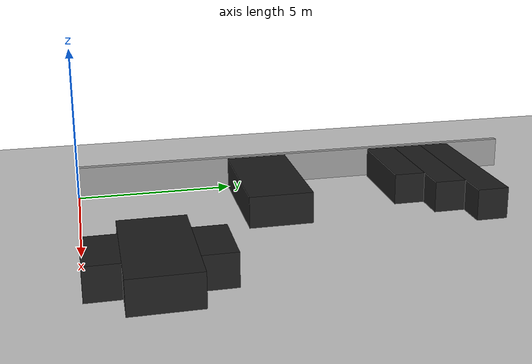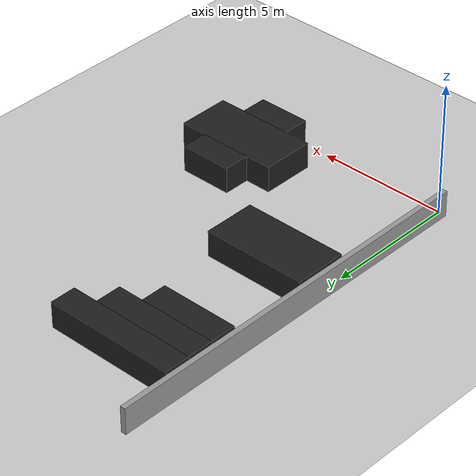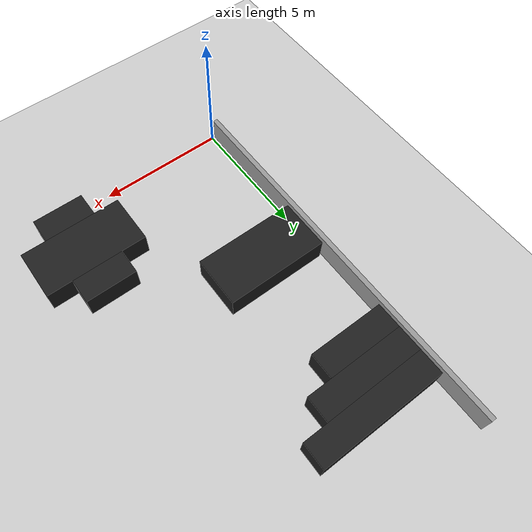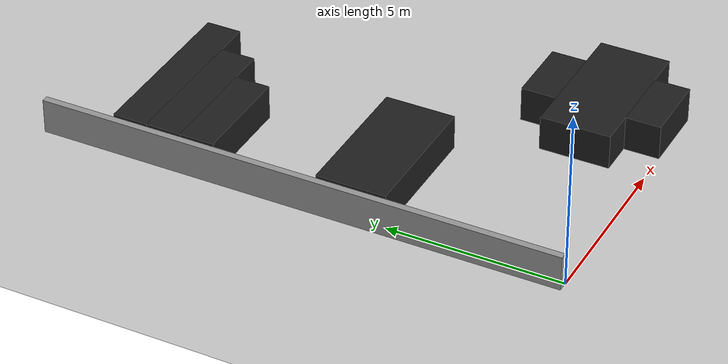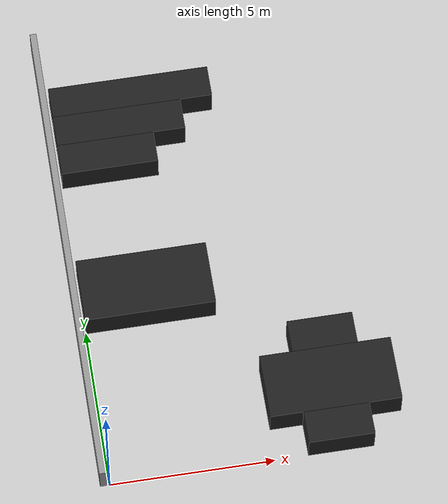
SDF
<sdf version="1.6">
 <world name="default">
  <model name="ground_plane">
   <static>1</static>
   <link name="link">
    <collision name="collision">
     <geometry><plane><normal>0 0 1</normal><size>100 100</size></plane></geometry>
     <surface><friction><ode><mu>100</mu><mu2>50</mu2></ode></friction></surface>
    </collision>
    <visual name="visual">
     <cast_shadows>0</cast_shadows>
     <geometry><plane><normal>0 0 1</normal><size>100 100</size></plane></geometry>
     <material>
      <script><uri>file://media/materials/scripts/gazebo.material</uri><name>Gazebo/Grey</name></script>
     </material>
    </visual>
   </link>
  </model>
  <model name="obstacle1">
   <link name="link_0">
    <inertial>
     <mass>1</mass>
     <inertia>
      <ixx>0.166667</ixx>
      <ixy>0</ixy>
      <ixz>0</ixz>
      <iyy>0.166667</iyy>
      <iyz>0</iyz>
      <izz>0.166667</izz>
     </inertia>
    </inertial>
    <visual name="visual">
     <geometry><box><size>4 2 1</size></box></geometry>
     <material>
      <lighting>1</lighting>
      <script><uri>file://media/materials/scripts/gazebo.material</uri><name>Gazebo/Black</name></script>
      <ambient>0 0 0 1</ambient>
      <diffuse>0 0 0 1</diffuse>
      <specular>0.01 0.01 0.01 1</specular>
      <emissive>0 0 0 1</emissive>
      <shader type="vertex"><normal_map>__default__</normal_map></shader>
     </material>
    </visual>
    <collision name="collision">
     <geometry><box><size>4 2 1</size></box></geometry>
     <surface>
      <friction>
       <ode><mu>1</mu><mu2>1</mu2><fdir1>0 0 0</fdir1><slip1>0</slip1><slip2>0</slip2></ode>
       <torsional>
        <coefficient>1</coefficient>
        <patch_radius>0</patch_radius>
        <surface_radius>0</surface_radius>
        <use_patch_radius>1</use_patch_radius>
        <ode><slip>0</slip></ode>
       </torsional>
      </friction>
      <bounce><restitution_coefficient>0</restitution_coefficient><threshold>1e+06</threshold></bounce>
      <contact>
       <collide_without_contact>0</collide_without_contact>
       <collide_without_contact_bitmask>1</collide_without_contact_bitmask>
       <collide_bitmask>1</collide_bitmask>
       <ode>
        <soft_cfm>0</soft_cfm>
        <soft_erp>0.2</soft_erp>
        <kp>1e+13</kp>
        <kd>1</kd>
        <max_vel>0.01</max_vel>
        <min_depth>0</min_depth>
       </ode>
       <bullet>
        <split_impulse>1</split_impulse>
        <split_impulse_penetration_threshold>-0.01</split_impulse_penetration_threshold>
        <soft_cfm>0</soft_cfm>
        <soft_erp>0.2</soft_erp>
        <kp>1e+13</kp>
        <kd>1</kd>
       </bullet>
      </contact>
     </surface>
    </collision>
   </link>
   <static>0</static>
   <pose>7.0 2.0 0.5 0 -0 0</pose>
  </model>
  <model name="obstacle2">
   <link name="link_0">
    <inertial>
     <mass>1</mass>
     <inertia>
      <ixx>0.166667</ixx>
      <ixy>0</ixy>
      <ixz>0</ixz>
      <iyy>0.166667</iyy>
      <iyz>0</iyz>
      <izz>0.166667</izz>
     </inertia>
    </inertial>
    <visual name="visual">
     <geometry><box><size>2 1 1</size></box></geometry>
     <material>
      <lighting>1</lighting>
      <script><uri>file://media/materials/scripts/gazebo.material</uri><name>Gazebo/Black</name></script>
      <ambient>0 0 0 1</ambient>
      <diffuse>0 0 0 1</diffuse>
      <specular>0.01 0.01 0.01 1</specular>
      <emissive>0 0 0 1</emissive>
      <shader type="vertex"><normal_map>__default__</normal_map></shader>
     </material>
    </visual>
    <collision name="collision">
     <geometry><box><size>2 1 1</size></box></geometry>
     <surface>
      <friction>
       <ode><mu>1</mu><mu2>1</mu2><fdir1>0 0 0</fdir1><slip1>0</slip1><slip2>0</slip2></ode>
       <torsional>
        <coefficient>1</coefficient>
        <patch_radius>0</patch_radius>
        <surface_radius>0</surface_radius>
        <use_patch_radius>1</use_patch_radius>
        <ode><slip>0</slip></ode>
       </torsional>
      </friction>
      <bounce><restitution_coefficient>0</restitution_coefficient><threshold>1e+06</threshold></bounce>
      <contact>
       <collide_without_contact>0</collide_without_contact>
       <collide_without_contact_bitmask>1</collide_without_contact_bitmask>
       <collide_bitmask>1</collide_bitmask>
       <ode>
        <soft_cfm>0</soft_cfm>
        <soft_erp>0.2</soft_erp>
        <kp>1e+13</kp>
        <kd>1</kd>
        <max_vel>0.01</max_vel>
        <min_depth>0</min_depth>
       </ode>
       <bullet>
        <split_impulse>1</split_impulse>
        <split_impulse_penetration_threshold>-0.01</split_impulse_penetration_threshold>
        <soft_cfm>0</soft_cfm>
        <soft_erp>0.2</soft_erp>
        <kp>1e+13</kp>
        <kd>1</kd>
       </bullet>
      </contact>
     </surface>
    </collision>
   </link>
   <static>0</static>
   <pose>7.0 3.5 0.5 0 -0 0</pose>
  </model>
  <model name="obstacle3">
   <link name="link_0">
    <inertial>
     <mass>1</mass>
     <inertia>
      <ixx>0.166667</ixx>
      <ixy>0</ixy>
      <ixz>0</ixz>
      <iyy>0.166667</iyy>
      <iyz>0</iyz>
      <izz>0.166667</izz>
     </inertia>
    </inertial>
    <visual name="visual">
     <geometry><box><size>2 1 1</size></box></geometry>
     <material>
      <lighting>1</lighting>
      <script><uri>file://media/materials/scripts/gazebo.material</uri><name>Gazebo/Black</name></script>
      <ambient>0 0 0 1</ambient>
      <diffuse>0 0 0 1</diffuse>
      <specular>0.01 0.01 0.01 1</specular>
      <emissive>0 0 0 1</emissive>
      <shader type="vertex"><normal_map>__default__</normal_map></shader>
     </material>
    </visual>
    <collision name="collision">
     <geometry><box><size>2 1 1</size></box></geometry>
     <surface>
      <friction>
       <ode><mu>1</mu><mu2>1</mu2><fdir1>0 0 0</fdir1><slip1>0</slip1><slip2>0</slip2></ode>
       <torsional>
        <coefficient>1</coefficient>
        <patch_radius>0</patch_radius>
        <surface_radius>0</surface_radius>
        <use_patch_radius>1</use_patch_radius>
        <ode><slip>0</slip></ode>
       </torsional>
      </friction>
      <bounce><restitution_coefficient>0</restitution_coefficient><threshold>1e+06</threshold></bounce>
      <contact>
       <collide_without_contact>0</collide_without_contact>
       <collide_without_contact_bitmask>1</collide_without_contact_bitmask>
       <collide_bitmask>1</collide_bitmask>
       <ode>
        <soft_cfm>0</soft_cfm>
        <soft_erp>0.2</soft_erp>
        <kp>1e+13</kp>
        <kd>1</kd>
        <max_vel>0.01</max_vel>
        <min_depth>0</min_depth>
       </ode>
       <bullet>
        <split_impulse>1</split_impulse>
        <split_impulse_penetration_threshold>-0.01</split_impulse_penetration_threshold>
        <soft_cfm>0</soft_cfm>
        <soft_erp>0.2</soft_erp>
        <kp>1e+13</kp>
        <kd>1</kd>
       </bullet>
      </contact>
     </surface>
    </collision>
   </link>
   <static>0</static>
   <pose>7.0 0.5 0.5 0 -0 0</pose>
  </model>
  <model name="obstacle4">
   <link name="link_0">
    <inertial>
     <mass>1</mass>
     <inertia>
      <ixx>0.166667</ixx>
      <ixy>0</ixy>
      <ixz>0</ixz>
      <iyy>0.166667</iyy>
      <iyz>0</iyz>
      <izz>0.166667</izz>
     </inertia>
    </inertial>
    <visual name="visual">
     <geometry><box><size>4 2 1</size></box></geometry>
     <material>
      <lighting>1</lighting>
      <script><uri>file://media/materials/scripts/gazebo.material</uri><name>Gazebo/Black</name></script>
      <ambient>0 0 0 1</ambient>
      <diffuse>0 0 0 1</diffuse>
      <specular>0.01 0.01 0.01 1</specular>
      <emissive>0 0 0 1</emissive>
      <shader type="vertex"><normal_map>__default__</normal_map></shader>
     </material>
    </visual>
    <collision name="collision">
     <geometry><box><size>4 2 1</size></box></geometry>
     <surface>
      <friction>
       <ode><mu>1</mu><mu2>1</mu2><fdir1>0 0 0</fdir1><slip1>0</slip1><slip2>0</slip2></ode>
       <torsional>
        <coefficient>1</coefficient>
        <patch_radius>0</patch_radius>
        <surface_radius>0</surface_radius>
        <use_patch_radius>1</use_patch_radius>
        <ode><slip>0</slip></ode>
       </torsional>
      </friction>
      <bounce><restitution_coefficient>0</restitution_coefficient><threshold>1e+06</threshold></bounce>
      <contact>
       <collide_without_contact>0</collide_without_contact>
       <collide_without_contact_bitmask>1</collide_without_contact_bitmask>
       <collide_bitmask>1</collide_bitmask>
       <ode>
        <soft_cfm>0</soft_cfm>
        <soft_erp>0.2</soft_erp>
        <kp>1e+13</kp>
        <kd>1</kd>
        <max_vel>0.01</max_vel>
        <min_depth>0</min_depth>
       </ode>
       <bullet>
        <split_impulse>1</split_impulse>
        <split_impulse_penetration_threshold>-0.01</split_impulse_penetration_threshold>
        <soft_cfm>0</soft_cfm>
        <soft_erp>0.2</soft_erp>
        <kp>1e+13</kp>
        <kd>1</kd>
       </bullet>
      </contact>
     </surface>
    </collision>
   </link>
   <static>0</static>
   <pose>2.0 6.0 0.5 0 -0 0</pose>
  </model>
  <model name="obstacle5">
   <link name="link_0">
    <inertial>
     <mass>1</mass>
     <inertia>
      <ixx>0.166667</ixx>
      <ixy>0</ixy>
      <ixz>0</ixz>
      <iyy>0.166667</iyy>
      <iyz>0</iyz>
      <izz>0.166667</izz>
     </inertia>
    </inertial>
    <visual name="visual">
     <geometry><box><size>3 1 1</size></box></geometry>
     <material>
      <lighting>1</lighting>
      <script><uri>file://media/materials/scripts/gazebo.material</uri><name>Gazebo/Black</name></script>
      <ambient>0 0 0 1</ambient>
      <diffuse>0 0 0 1</diffuse>
      <specular>0.01 0.01 0.01 1</specular>
      <emissive>0 0 0 1</emissive>
      <shader type="vertex"><normal_map>__default__</normal_map></shader>
     </material>
    </visual>
    <collision name="collision">
     <geometry><box><size>3 1 1</size></box></geometry>
     <surface>
      <friction>
       <ode><mu>1</mu><mu2>1</mu2><fdir1>0 0 0</fdir1><slip1>0</slip1><slip2>0</slip2></ode>
       <torsional>
        <coefficient>1</coefficient>
        <patch_radius>0</patch_radius>
        <surface_radius>0</surface_radius>
        <use_patch_radius>1</use_patch_radius>
        <ode><slip>0</slip></ode>
       </torsional>
      </friction>
      <bounce><restitution_coefficient>0</restitution_coefficient><threshold>1e+06</threshold></bounce>
      <contact>
       <collide_without_contact>0</collide_without_contact>
       <collide_without_contact_bitmask>1</collide_without_contact_bitmask>
       <collide_bitmask>1</collide_bitmask>
       <ode>
        <soft_cfm>0</soft_cfm>
        <soft_erp>0.2</soft_erp>
        <kp>1e+13</kp>
        <kd>1</kd>
        <max_vel>0.01</max_vel>
        <min_depth>0</min_depth>
       </ode>
       <bullet>
        <split_impulse>1</split_impulse>
        <split_impulse_penetration_threshold>-0.01</split_impulse_penetration_threshold>
        <soft_cfm>0</soft_cfm>
        <soft_erp>0.2</soft_erp>
        <kp>1e+13</kp>
        <kd>1</kd>
       </bullet>
      </contact>
     </surface>
    </collision>
   </link>
   <static>0</static>
   <pose>1.5 10.5 0.5 0 -0 0</pose>
  </model>
  <model name="obstacle6">
   <link name="link_0">
    <inertial>
     <mass>1</mass>
     <inertia>
      <ixx>0.166667</ixx>
      <ixy>0</ixy>
      <ixz>0</ixz>
      <iyy>0.166667</iyy>
      <iyz>0</iyz>
      <izz>0.166667</izz>
     </inertia>
    </inertial>
    <visual name="visual">
     <geometry><box><size>4 1 1</size></box></geometry>
     <material>
      <lighting>1</lighting>
      <script><uri>file://media/materials/scripts/gazebo.material</uri><name>Gazebo/Black</name></script>
      <ambient>0 0 0 1</ambient>
      <diffuse>0 0 0 1</diffuse>
      <specular>0.01 0.01 0.01 1</specular>
      <emissive>0 0 0 1</emissive>
      <shader type="vertex"><normal_map>__default__</normal_map></shader>
     </material>
    </visual>
    <collision name="collision">
     <geometry><box><size>4 1 1</size></box></geometry>
     <surface>
      <friction>
       <ode><mu>1</mu><mu2>1</mu2><fdir1>0 0 0</fdir1><slip1>0</slip1><slip2>0</slip2></ode>
       <torsional>
        <coefficient>1</coefficient>
        <patch_radius>0</patch_radius>
        <surface_radius>0</surface_radius>
        <use_patch_radius>1</use_patch_radius>
        <ode><slip>0</slip></ode>
       </torsional>
      </friction>
      <bounce><restitution_coefficient>0</restitution_coefficient><threshold>1e+06</threshold></bounce>
      <contact>
       <collide_without_contact>0</collide_without_contact>
       <collide_without_contact_bitmask>1</collide_without_contact_bitmask>
       <collide_bitmask>1</collide_bitmask>
       <ode>
        <soft_cfm>0</soft_cfm>
        <soft_erp>0.2</soft_erp>
        <kp>1e+13</kp>
        <kd>1</kd>
        <max_vel>0.01</max_vel>
        <min_depth>0</min_depth>
       </ode>
       <bullet>
        <split_impulse>1</split_impulse>
        <split_impulse_penetration_threshold>-0.01</split_impulse_penetration_threshold>
        <soft_cfm>0</soft_cfm>
        <soft_erp>0.2</soft_erp>
        <kp>1e+13</kp>
        <kd>1</kd>
       </bullet>
      </contact>
     </surface>
    </collision>
   </link>
   <static>0</static>
   <pose>2.0 11.5 0.5 0 -0 0</pose>
  </model>
  <model name="obstacle7">
   <link name="link_0">
    <inertial>
     <mass>1</mass>
     <inertia>
      <ixx>0.166667</ixx>
      <ixy>0</ixy>
      <ixz>0</ixz>
      <iyy>0.166667</iyy>
      <iyz>0</iyz>
      <izz>0.166667</izz>
     </inertia>
    </inertial>
    <visual name="visual">
     <geometry><box><size>5 1 1</size></box></geometry>
     <material>
      <lighting>1</lighting>
      <script><uri>file://media/materials/scripts/gazebo.material</uri><name>Gazebo/Black</name></script>
      <ambient>0 0 0 1</ambient>
      <diffuse>0 0 0 1</diffuse>
      <specular>0.01 0.01 0.01 1</specular>
      <emissive>0 0 0 1</emissive>
      <shader type="vertex"><normal_map>__default__</normal_map></shader>
     </material>
    </visual>
    <collision name="collision">
     <geometry><box><size>5 1 1</size></box></geometry>
     <surface>
      <friction>
       <ode><mu>1</mu><mu2>1</mu2><fdir1>0 0 0</fdir1><slip1>0</slip1><slip2>0</slip2></ode>
       <torsional>
        <coefficient>1</coefficient>
        <patch_radius>0</patch_radius>
        <surface_radius>0</surface_radius>
        <use_patch_radius>1</use_patch_radius>
        <ode><slip>0</slip></ode>
       </torsional>
      </friction>
      <bounce><restitution_coefficient>0</restitution_coefficient><threshold>1e+06</threshold></bounce>
      <contact>
       <collide_without_contact>0</collide_without_contact>
       <collide_without_contact_bitmask>1</collide_without_contact_bitmask>
       <collide_bitmask>1</collide_bitmask>
       <ode>
        <soft_cfm>0</soft_cfm>
        <soft_erp>0.2</soft_erp>
        <kp>1e+13</kp>
        <kd>1</kd>
        <max_vel>0.01</max_vel>
        <min_depth>0</min_depth>
       </ode>
       <bullet>
        <split_impulse>1</split_impulse>
        <split_impulse_penetration_threshold>-0.01</split_impulse_penetration_threshold>
        <soft_cfm>0</soft_cfm>
        <soft_erp>0.2</soft_erp>
        <kp>1e+13</kp>
        <kd>1</kd>
       </bullet>
      </contact>
     </surface>
    </collision>
   </link>
   <static>0</static>
   <pose>2.5 12.5 0.5 0 -0 0</pose>
  </model>
  <model name="boundry2">
   <static>1</static>
   <link name="link">
    <pose>0 0 0.5 0 -0 0</pose>
    <collision name="collision"><geometry><box><size>0.2 15.0 1.0</size></box></geometry></collision>
    <visual name="visual">
     <cast_shadows>0</cast_shadows>
     <geometry><box><size>0.2 15.0 1.0</size></box></geometry>
     <material>
      <script>
       <uri>model://grey_wall/materials/scripts</uri>
       <uri>model://grey_wall/materials/textures</uri>
       <name>vrc/grey_wall</name>
      </script>
     </material>
    </visual>
   </link>
   <pose>-0.2 7.5 0 0 -0 0</pose>
  </model>
 </world>
</sdf>
